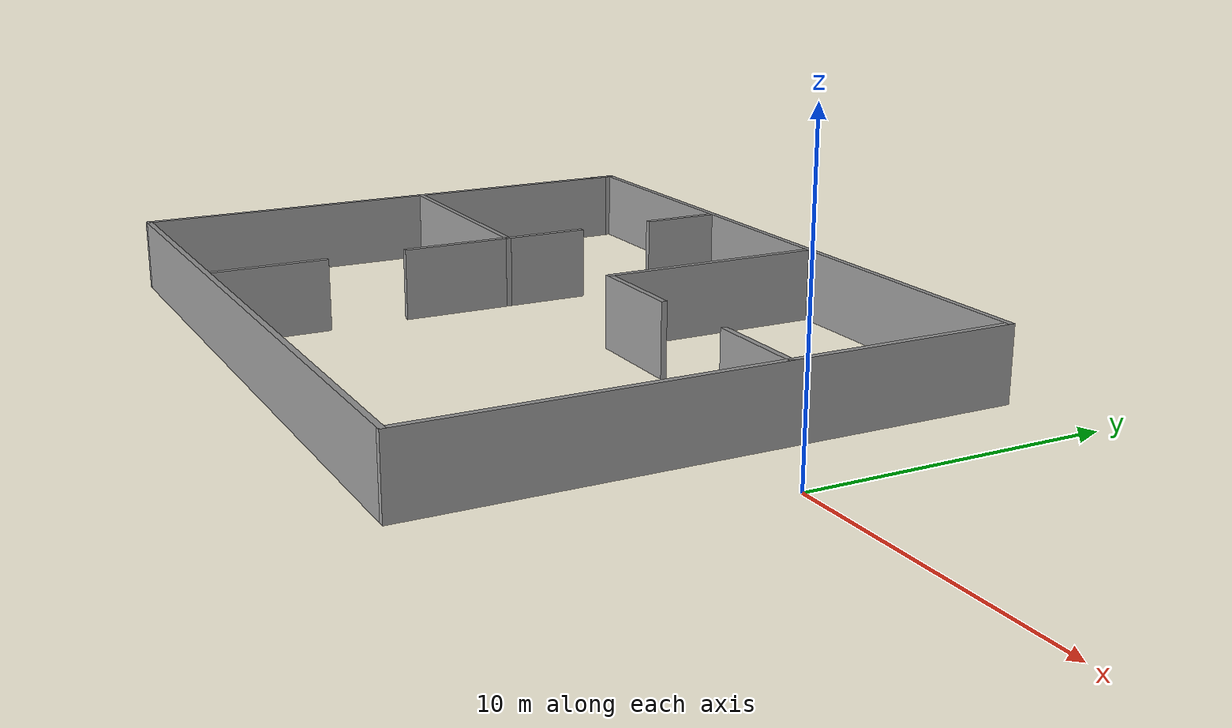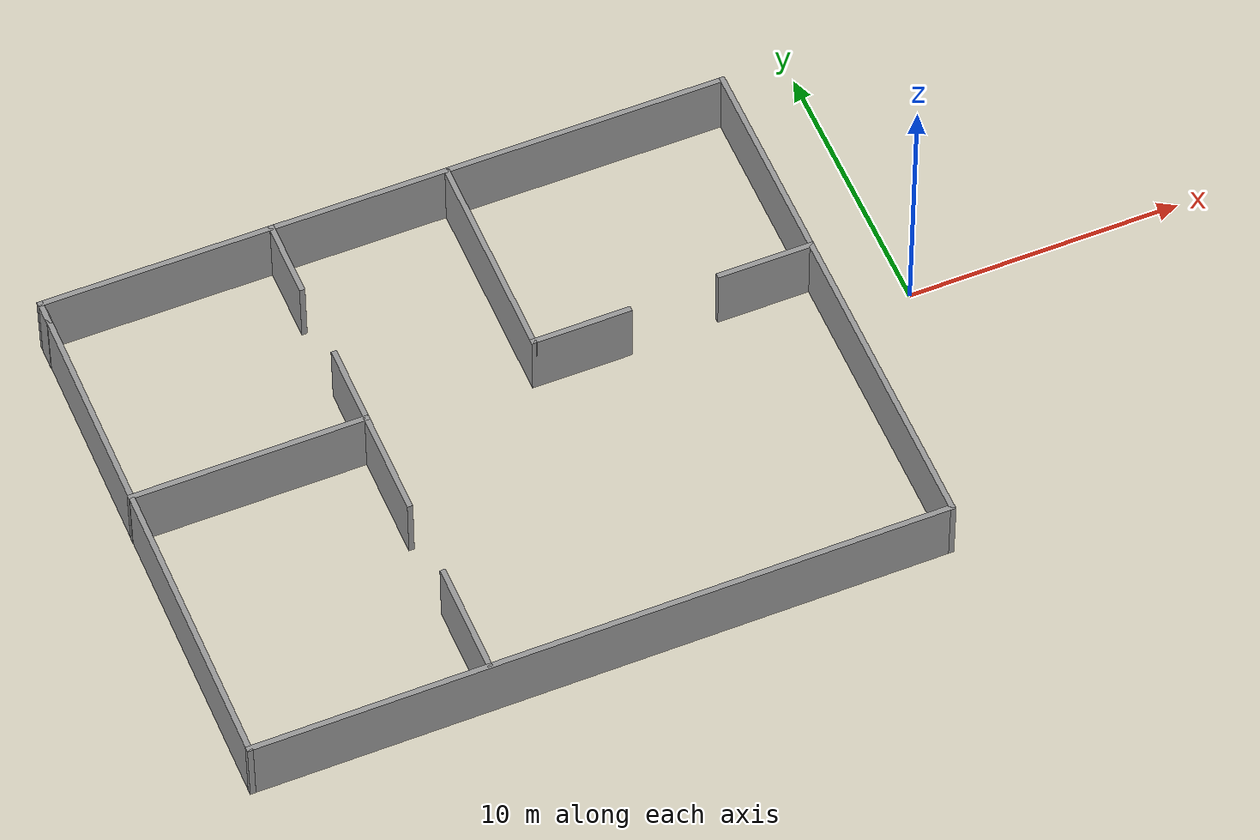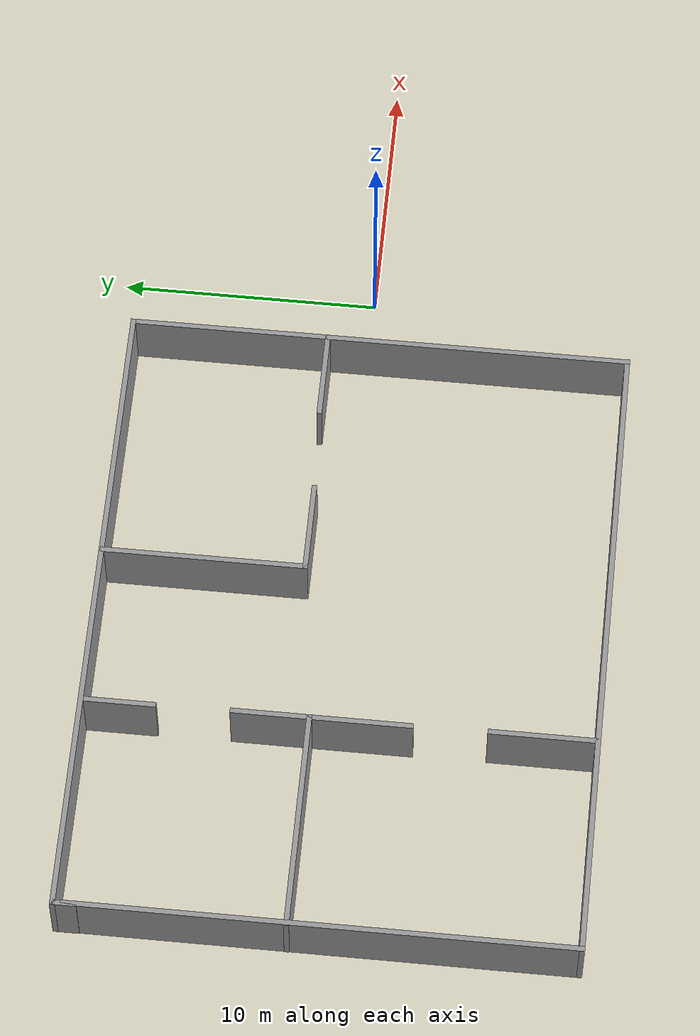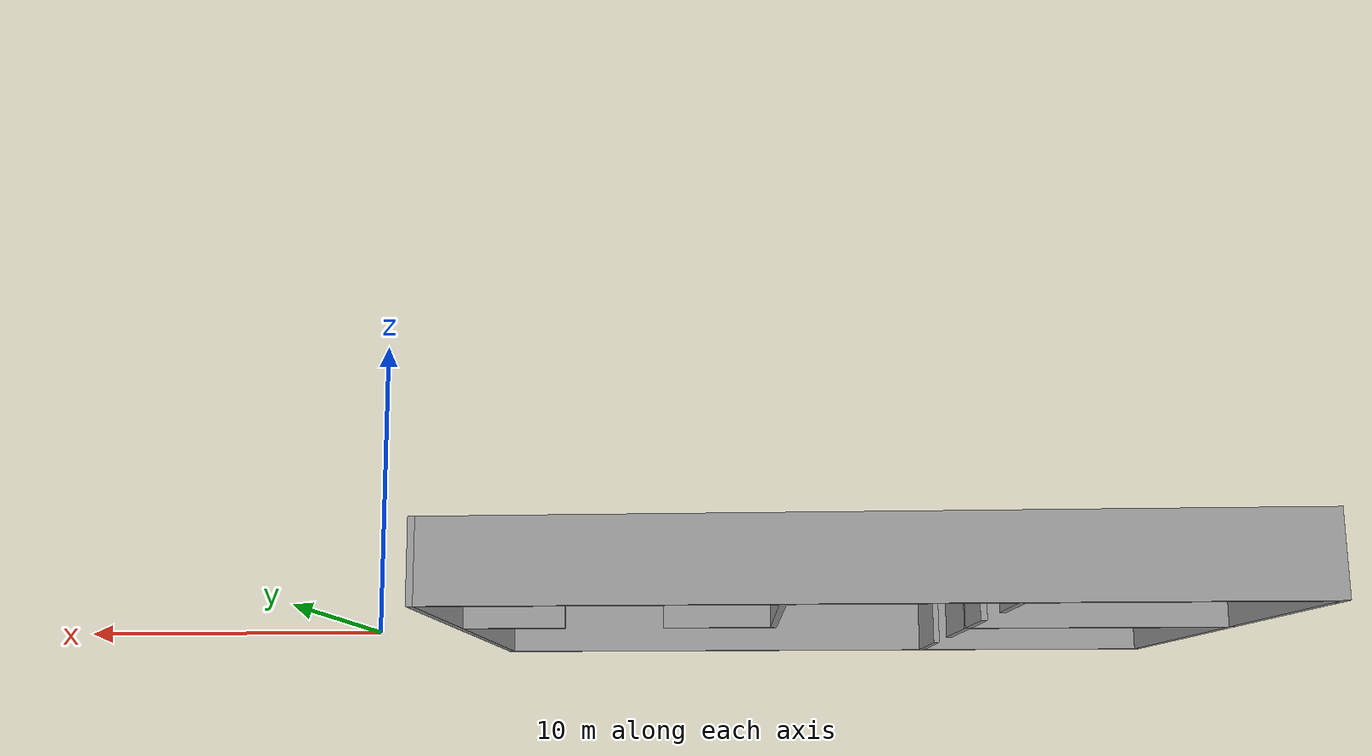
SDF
<?xml version='1.0'?>
<sdf version='1.4'>
  <model name='simpleBuilding'>
    <link name='Wall_1'>
      <collision name='Wall_1_Collision'>
        <geometry>
          <box>
            <size>19.2469 0.2 2.5</size>
          </box>
        </geometry>
        <pose>0 0 1.25 0 -0 0</pose>
      </collision>
      <visual name='Wall_1_Visual'>
        <pose>0 0 1.25 0 -0 0</pose>
        <geometry>
          <box>
            <size>19.2469 0.2 2.5</size>
          </box>
        </geometry>
        <material>
          <script>
            <uri>file://media/materials/scripts/gazebo.material</uri>
            <name>Gazebo/Grey</name>
          </script>
        </material>
      </visual>
      <velocity_decay>
        <linear>0</linear>
        <angular>0</angular>
      </velocity_decay>
      <pose>-27.8925 -0.645556 0 0 0 -1.5708</pose>
    </link>
    <link name='Wall_10'>
      <collision name='Wall_10_Collision'>
        <geometry>
          <box>
            <size>3.08448 0.2 2.5</size>
          </box>
        </geometry>
        <pose>0 0 1.25 0 -0 0</pose>
      </collision>
      <visual name='Wall_10_Visual'>
        <pose>0 0 1.25 0 -0 0</pose>
        <geometry>
          <box>
            <size>3.08448 0.2 2.5</size>
          </box>
        </geometry>
        <material>
          <script>
            <uri>file://media/materials/scripts/gazebo.material</uri>
            <name>Gazebo/Grey</name>
          </script>
        </material>
      </visual>
      <velocity_decay>
        <linear>0</linear>
        <angular>0</angular>
      </velocity_decay>
      <pose>-19.5352 2.09537 0 0 0 -1.5708</pose>
    </link>
    <link name='Wall_11'>
      <collision name='Wall_11_Collision'>
        <geometry>
          <box>
            <size>8.57431 0.2 2.5</size>
          </box>
        </geometry>
        <pose>0 0 1.25 0 -0 0</pose>
      </collision>
      <visual name='Wall_11_Visual'>
        <pose>0 0 1.25 0 -0 0</pose>
        <geometry>
          <box>
            <size>8.57431 0.2 2.5</size>
          </box>
        </geometry>
        <material>
          <script>
            <uri>file://media/materials/scripts/gazebo.material</uri>
            <name>Gazebo/Grey</name>
          </script>
        </material>
      </visual>
      <velocity_decay>
        <linear>0</linear>
        <angular>0</angular>
      </velocity_decay>
      <pose>-23.7223 0.653132 0 0 -0 3.14159</pose>
    </link>
    <link name='Wall_13'>
      <collision name='Wall_13_Collision'>
        <geometry>
          <box>
            <size>3.96844 0.2 2.5</size>
          </box>
        </geometry>
        <pose>0 0 1.25 0 -0 0</pose>
      </collision>
      <visual name='Wall_13_Visual'>
        <pose>0 0 1.25 0 -0 0</pose>
        <geometry>
          <box>
            <size>3.96844 0.2 2.5</size>
          </box>
        </geometry>
        <material>
          <script>
            <uri>file://media/materials/scripts/gazebo.material</uri>
            <name>Gazebo/Grey</name>
          </script>
        </material>
      </visual>
      <velocity_decay>
        <linear>0</linear>
        <angular>0</angular>
      </velocity_decay>
      <pose>-19.5352 -1.27761 0 0 0 -1.5708</pose>
    </link>
    <link name='Wall_15'>
      <collision name='Wall_15_Collision'>
        <geometry>
          <box>
            <size>4.15453 0.2 2.5</size>
          </box>
        </geometry>
        <pose>0 0 1.25 0 -0 0</pose>
      </collision>
      <visual name='Wall_15_Visual'>
        <pose>0 0 1.25 0 -0 0</pose>
        <geometry>
          <box>
            <size>4.15453 0.2 2.5</size>
          </box>
        </geometry>
        <material>
          <script>
            <uri>file://media/materials/scripts/gazebo.material</uri>
            <name>Gazebo/Grey</name>
          </script>
        </material>
      </visual>
      <velocity_decay>
        <linear>0</linear>
        <angular>0</angular>
      </velocity_decay>
      <pose>-19.4887 -8.11663 0 0 0 -1.5708</pose>
    </link>
    <link name='Wall_17'>
      <collision name='Wall_17_Collision'>
        <geometry>
          <box>
            <size>7.96949 0.2 2.5</size>
          </box>
        </geometry>
        <pose>0 0 1.25 0 -0 0</pose>
      </collision>
      <visual name='Wall_17_Visual'>
        <pose>0 0 1.25 0 -0 0</pose>
        <geometry>
          <box>
            <size>7.96949 0.2 2.5</size>
          </box>
        </geometry>
        <material>
          <script>
            <uri>file://media/materials/scripts/gazebo.material</uri>
            <name>Gazebo/Grey</name>
          </script>
        </material>
      </visual>
      <velocity_decay>
        <linear>0</linear>
        <angular>0</angular>
      </velocity_decay>
      <pose>-13.2079 5.32879 0 0 0 -1.5708</pose>
    </link>
    <link name='Wall_18'>
      <collision name='Wall_18_Collision'>
        <geometry>
          <box>
            <size>3.64277 0.2 2.5</size>
          </box>
        </geometry>
        <pose>0 0 1.25 0 -0 0</pose>
      </collision>
      <visual name='Wall_18_Visual'>
        <pose>0 0 1.25 0 -0 0</pose>
        <geometry>
          <box>
            <size>3.64277 0.2 2.5</size>
          </box>
        </geometry>
        <material>
          <script>
            <uri>file://media/materials/scripts/gazebo.material</uri>
            <name>Gazebo/Grey</name>
          </script>
        </material>
      </visual>
      <velocity_decay>
        <linear>0</linear>
        <angular>0</angular>
      </velocity_decay>
      <pose>-11.4865 1.44404 0 0 -0 0</pose>
    </link>
    <link name='Wall_2'>
      <collision name='Wall_2_Collision'>
        <geometry>
          <box>
            <size>25.0787 0.2 2.5</size>
          </box>
        </geometry>
        <pose>0 0 1.25 0 -0 0</pose>
      </collision>
      <visual name='Wall_2_Visual'>
        <pose>0 0 1.25 0 -0 0</pose>
        <geometry>
          <box>
            <size>25.0787 0.2 2.5</size>
          </box>
        </geometry>
        <material>
          <script>
            <uri>file://media/materials/scripts/gazebo.material</uri>
            <name>Gazebo/Grey</name>
          </script>
        </material>
      </visual>
      <velocity_decay>
        <linear>0</linear>
        <angular>0</angular>
      </velocity_decay>
      <pose>-15.4532 -10.169 0 0 -0 0</pose>
    </link>
    <link name='Wall_21'>
      <collision name='Wall_21_Collision'>
        <geometry>
          <box>
            <size>3.54972 0.2 2.5</size>
          </box>
        </geometry>
        <pose>0 0 1.25 0 -0 0</pose>
      </collision>
      <visual name='Wall_21_Visual'>
        <pose>0 0 1.25 0 -0 0</pose>
        <geometry>
          <box>
            <size>3.54972 0.2 2.5</size>
          </box>
        </geometry>
        <material>
          <script>
            <uri>file://media/materials/scripts/gazebo.material</uri>
            <name>Gazebo/Grey</name>
          </script>
        </material>
      </visual>
      <velocity_decay>
        <linear>0</linear>
        <angular>0</angular>
      </velocity_decay>
      <pose>-4.69405 1.58361 0 0 -0 0</pose>
    </link>
    <link name='Wall_3'>
      <collision name='Wall_3_Collision'>
        <geometry>
          <box>
            <size>19.6291 0.2 2.5</size>
          </box>
        </geometry>
        <pose>0 0 1.25 0 -0 0</pose>
      </collision>
      <visual name='Wall_3_Visual'>
        <pose>0 0 1.25 0 -0 0</pose>
        <geometry>
          <box>
            <size>19.6291 0.2 2.5</size>
          </box>
        </geometry>
        <material>
          <script>
            <uri>file://media/materials/scripts/gazebo.material</uri>
            <name>Gazebo/Grey</name>
          </script>
        </material>
      </visual>
      <velocity_decay>
        <linear>0</linear>
        <angular>0</angular>
      </velocity_decay>
      <pose>-3.01385 -0.454473 0 0 -0 1.5708</pose>
    </link>
    <link name='Wall_4'>
      <collision name='Wall_4_Collision'>
        <geometry>
          <box>
            <size>25.0956 0.2 2.5</size>
          </box>
        </geometry>
        <pose>0 0 1.25 0 -0 0</pose>
      </collision>
      <visual name='Wall_4_Visual'>
        <pose>0 0 1.25 0 -0 0</pose>
        <geometry>
          <box>
            <size>25.0956 0.2 2.5</size>
          </box>
        </geometry>
        <material>
          <script>
            <uri>file://media/materials/scripts/gazebo.material</uri>
            <name>Gazebo/Grey</name>
          </script>
        </material>
      </visual>
      <velocity_decay>
        <linear>0</linear>
        <angular>0</angular>
      </velocity_decay>
      <pose>-15.4617 9.26006 0 0 -0 3.14159</pose>
    </link>
    <link name='Wall_5'>
      <collision name='Wall_5_Collision'>
        <geometry>
          <box>
            <size>0.990907 0.2 2.5</size>
          </box>
        </geometry>
        <pose>0 0 1.25 0 -0 0</pose>
      </collision>
      <visual name='Wall_5_Visual'>
        <pose>0 0 1.25 0 -0 0</pose>
        <geometry>
          <box>
            <size>0.990907 0.2 2.5</size>
          </box>
        </geometry>
        <material>
          <script>
            <uri>file://media/materials/scripts/gazebo.material</uri>
            <name>Gazebo/Grey</name>
          </script>
        </material>
      </visual>
      <velocity_decay>
        <linear>0</linear>
        <angular>0</angular>
      </velocity_decay>
      <pose>-27.9095 8.8646 0 0 0 -1.5708</pose>
    </link>
    <link name='Wall_7'>
      <collision name='Wall_7_Collision'>
        <geometry>
          <box>
            <size>2.94491 0.2 2.5</size>
          </box>
        </geometry>
        <pose>0 0 1.25 0 -0 0</pose>
      </collision>
      <visual name='Wall_7_Visual'>
        <pose>0 0 1.25 0 -0 0</pose>
        <geometry>
          <box>
            <size>2.94491 0.2 2.5</size>
          </box>
        </geometry>
        <material>
          <script>
            <uri>file://media/materials/scripts/gazebo.material</uri>
            <name>Gazebo/Grey</name>
          </script>
        </material>
      </visual>
      <velocity_decay>
        <linear>0</linear>
        <angular>0</angular>
      </velocity_decay>
      <pose>-19.5817 7.8876 0 0 0 -1.5708</pose>
    </link>
    <static>1</static>
  </model>
</sdf>
